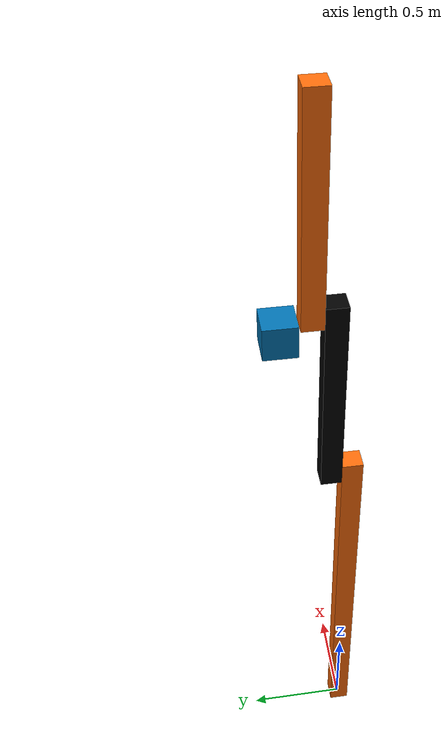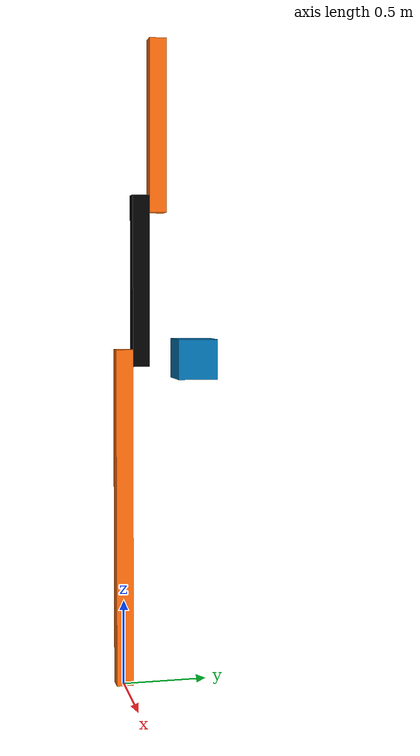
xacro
<?xml version="1.0"?>
<!-- Revolute-Revolute Manipulator -->
<robot name="rrbot" xmlns:xacro="http://www.ros.org/wiki/xacro">

  <!-- Constants for robot dimensions -->
  <xacro:property name="PI" value="3.1415926535897931"/>
  <xacro:property name="width" value="0.1" /> <!-- Square dimensions (widthxwidth) of beams -->
  <xacro:property name="height1" value="2" /> <!-- Link 1 -->
  <xacro:property name="height2" value="1" /> <!-- Link 2 -->
  <xacro:property name="height3" value="1" /> <!-- Link 3 -->
  <xacro:property name="axel_offset" value="0.05" /> <!-- Space btw top of beam and the each joint -->

  <material name="black">
    <color rgba="0.0 0.0 0.0 1.0"/>
  </material>

  <material name="orange">
    <color rgba="${255/255} ${108/255} ${10/255} 1.0"/>
  </material>

  <!-- Used for fixing robot to Gazebo 'base_link' -->
  <link name="world"/>

  <joint name="fixed" type="fixed">
    <parent link="world"/>
    <child link="link1"/>
  </joint>

  <!-- Base Link -->
  <link name="link1">
    <collision>
      <origin xyz="0 0 ${height1/2}" rpy="0 0 0"/>
      <geometry>
  <box size="${width} ${width} ${height1}"/>
      </geometry>
    </collision>

    <visual>
      <origin xyz="0 0 ${height1/2}" rpy="0 0 0"/>
      <geometry>
  <box size="${width} ${width} ${height1}"/>
      </geometry>
      <material name="orange"/>
    </visual>

    <inertial>
      <origin xyz="0 0 ${height1/2}" rpy="0 0 0"/>
      <mass value="1"/>
      <inertia
    ixx="1.0" ixy="0.0" ixz="0.0"
    iyy="1.0" iyz="0.0"
    izz="1.0"/>
    </inertial>
  </link>

  <joint name="joint1" type="continuous">
    <parent link="link1"/>
    <child link="link2"/>
    <origin xyz="0 ${width} ${height1 - axel_offset}" rpy="0 0 0"/>
    <axis xyz="0 1 0"/>
    <dynamics damping="0.7"/>
    <limit effort="20" velocity="${2*PI}" />
  </joint>

  <!-- Middle Link -->
  <link name="link2">
    <collision>
      <origin xyz="0 0 ${height2/2 - axel_offset}" rpy="0 0 0"/>
      <geometry>
  <box size="${width} ${width} ${height2}"/>
      </geometry>
    </collision>

    <visual>
      <origin xyz="0 0 ${height2/2 - axel_offset}" rpy="0 0 0"/>
      <geometry>
  <box size="${width} ${width} ${height2}"/>
      </geometry>
      <material name="black"/>
    </visual>

    <inertial>
      <origin xyz="0 0 ${height2/2 - axel_offset}" rpy="0 0 0"/>
      <mass value="1"/>
      <inertia
    ixx="1.0" ixy="0.0" ixz="0.0"
    iyy="1.0" iyz="0.0"
    izz="1.0"/>
    </inertial>
  </link>

  <joint name="joint2" type="revolute">
    <parent link="link2"/>
    <child link="link3"/>
    <origin xyz="0 ${width} ${height2 - axel_offset*2}" rpy="0 0 0"/>
    <axis xyz="0 1 0"/>
    <dynamics damping="0.7"/>
    <limit upper="${PI/2.0}" lower="${-PI/2.0}" effort="20" velocity="${2*PI}" />
  </joint>

  <!-- Top Link -->
  <link name="link3">
    <collision>
      <origin xyz="0 0 ${height3/2 - axel_offset}" rpy="0 0 0"/>
      <geometry>
  <box size="${width} ${width} ${height3}"/>
      </geometry>
    </collision>

    <visual>
      <origin xyz="0 0 ${height3/2 - axel_offset}" rpy="0 0 0"/>
      <geometry>
  <box size="${width} ${width} ${height3}"/>
      </geometry>
      <material name="orange"/>
    </visual>

    <inertial>
      <origin xyz="0 0 ${height3/2 - axel_offset}" rpy="0 0 0"/>
      <mass value="1"/>
      <inertia
    ixx="1.0" ixy="0.0" ixz="0.0"
    iyy="1.0" iyz="0.0"
    izz="1.0"/>
    </inertial>
  </link>

  <!-- A box to test collision checking against -->

  <joint name="box_to_world_joint" type="fixed">
    <parent link="world"/>
    <child link="obstacle_box_link"/>
    <origin xyz="1.0 0.2 2.0"/>
  </joint>

  <link name="obstacle_box_link">
    <collision>
      <origin xyz="0 0 0" rpy="0 0 0"/>
      <geometry>
        <box size="0.2 0.2 0.2"/>
      </geometry>
    </collision>

    <visual>
      <origin xyz="0 0 0" rpy="0 0 0"/>
      <geometry>
        <box size="0.2 0.2 0.2"/>
      </geometry>
    </visual>

    <inertial>
      <origin xyz="0 0 ${height3/2 - axel_offset}" rpy="0 0 0"/>
      <mass value="1"/>
      <inertia
        ixx="1.0" ixy="0.0" ixz="0.0"
        iyy="1.0" iyz="0.0"
        izz="1.0"/>
    </inertial>
  </link>
</robot>
